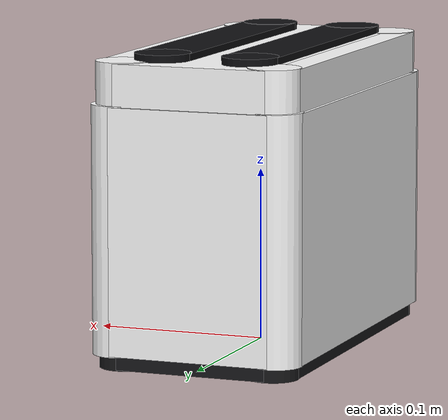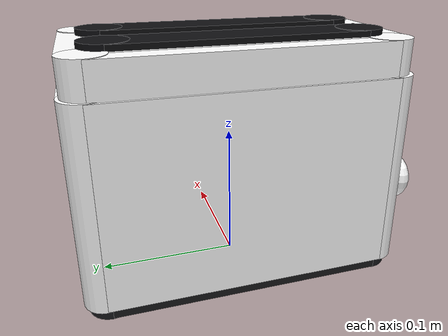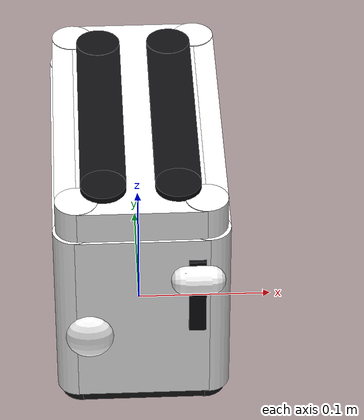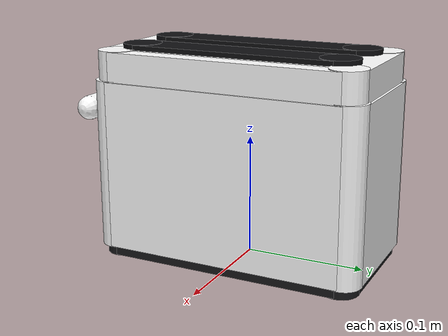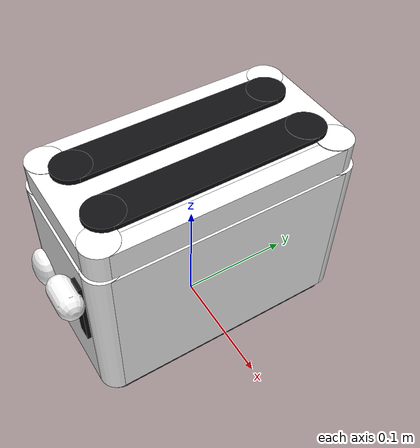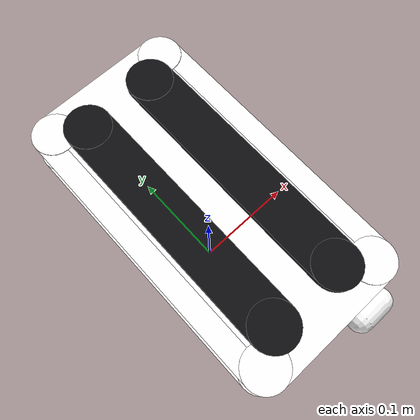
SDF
<?xml version="1.0"?>
<sdf version="1.6">
  <model name="toaster_4_slice">
    <static>true</static>
    <link name="link">
      <visual name="body_a">
        <pose>0 0 0.078 0 0 0</pose>
        <geometry><box><size>0.094 0.23 0.14</size></box></geometry>
        <material><pbr><metal><albedo_map>textures/stainless.png</albedo_map><metalness>0.15</metalness><roughness>0.25</roughness></metal></pbr><ambient>1 1 1 1</ambient><diffuse>1 1 1 1</diffuse><specular>1 1 1 1</specular><emissive>0 0 0 1</emissive></material>
      </visual>
      <visual name="body_b0">
        <pose>-0.0545 0 0.078 0 0 0</pose>
        <geometry><box><size>0.015 0.2 0.14</size></box></geometry>
        <material><pbr><metal><albedo_map>textures/stainless.png</albedo_map><metalness>0.15</metalness><roughness>0.25</roughness></metal></pbr><ambient>1 1 1 1</ambient><diffuse>1 1 1 1</diffuse><specular>1 1 1 1</specular><emissive>0 0 0 1</emissive></material>
      </visual>
      <visual name="body_b1">
        <pose>0.0545 0 0.078 0 0 0</pose>
        <geometry><box><size>0.015 0.2 0.14</size></box></geometry>
        <material><pbr><metal><albedo_map>textures/stainless.png</albedo_map><metalness>0.15</metalness><roughness>0.25</roughness></metal></pbr><ambient>1 1 1 1</ambient><diffuse>1 1 1 1</diffuse><specular>1 1 1 1</specular><emissive>0 0 0 1</emissive></material>
      </visual>
      <visual name="body_c0">
        <pose>-0.047 -0.1 0.078 0 0 0</pose>
        <geometry><cylinder><radius>0.015</radius><length>0.1406</length></cylinder></geometry>
        <material><pbr><metal><albedo_map>textures/stainless.png</albedo_map><metalness>0.15</metalness><roughness>0.25</roughness></metal></pbr><ambient>1 1 1 1</ambient><diffuse>1 1 1 1</diffuse><specular>1 1 1 1</specular><emissive>0 0 0 1</emissive></material>
      </visual>
      <visual name="body_c1">
        <pose>-0.047 0.1 0.078 0 0 0</pose>
        <geometry><cylinder><radius>0.015</radius><length>0.14078</length></cylinder></geometry>
        <material><pbr><metal><albedo_map>textures/stainless.png</albedo_map><metalness>0.15</metalness><roughness>0.25</roughness></metal></pbr><ambient>1 1 1 1</ambient><diffuse>1 1 1 1</diffuse><specular>1 1 1 1</specular><emissive>0 0 0 1</emissive></material>
      </visual>
      <visual name="body_c2">
        <pose>0.047 -0.1 0.078 0 0 0</pose>
        <geometry><cylinder><radius>0.015</radius><length>0.14096</length></cylinder></geometry>
        <material><pbr><metal><albedo_map>textures/stainless.png</albedo_map><metalness>0.15</metalness><roughness>0.25</roughness></metal></pbr><ambient>1 1 1 1</ambient><diffuse>1 1 1 1</diffuse><specular>1 1 1 1</specular><emissive>0 0 0 1</emissive></material>
      </visual>
      <visual name="body_c3">
        <pose>0.047 0.1 0.078 0 0 0</pose>
        <geometry><cylinder><radius>0.015</radius><length>0.14114</length></cylinder></geometry>
        <material><pbr><metal><albedo_map>textures/stainless.png</albedo_map><metalness>0.15</metalness><roughness>0.25</roughness></metal></pbr><ambient>1 1 1 1</ambient><diffuse>1 1 1 1</diffuse><specular>1 1 1 1</specular><emissive>0 0 0 1</emissive></material>
      </visual>
      <visual name="deck_a">
        <pose>0 0 0.16 0 0 0</pose>
        <geometry><box><size>0.09 0.226 0.024</size></box></geometry>
        <material><pbr><metal><albedo_map>textures/stainless.png</albedo_map><metalness>0.15</metalness><roughness>0.25</roughness></metal></pbr><ambient>1 1 1 1</ambient><diffuse>1 1 1 1</diffuse><specular>1 1 1 1</specular><emissive>0 0 0 1</emissive></material>
      </visual>
      <visual name="deck_b0">
        <pose>-0.0525 0 0.16 0 0 0</pose>
        <geometry><box><size>0.015 0.196 0.024</size></box></geometry>
        <material><pbr><metal><albedo_map>textures/stainless.png</albedo_map><metalness>0.15</metalness><roughness>0.25</roughness></metal></pbr><ambient>1 1 1 1</ambient><diffuse>1 1 1 1</diffuse><specular>1 1 1 1</specular><emissive>0 0 0 1</emissive></material>
      </visual>
      <visual name="deck_b1">
        <pose>0.0525 0 0.16 0 0 0</pose>
        <geometry><box><size>0.015 0.196 0.024</size></box></geometry>
        <material><pbr><metal><albedo_map>textures/stainless.png</albedo_map><metalness>0.15</metalness><roughness>0.25</roughness></metal></pbr><ambient>1 1 1 1</ambient><diffuse>1 1 1 1</diffuse><specular>1 1 1 1</specular><emissive>0 0 0 1</emissive></material>
      </visual>
      <visual name="deck_c0">
        <pose>-0.045 -0.098 0.16 0 0 0</pose>
        <geometry><cylinder><radius>0.015</radius><length>0.0246</length></cylinder></geometry>
        <material><pbr><metal><albedo_map>textures/stainless.png</albedo_map><metalness>0.15</metalness><roughness>0.25</roughness></metal></pbr><ambient>1 1 1 1</ambient><diffuse>1 1 1 1</diffuse><specular>1 1 1 1</specular><emissive>0 0 0 1</emissive></material>
      </visual>
      <visual name="deck_c1">
        <pose>-0.045 0.098 0.16 0 0 0</pose>
        <geometry><cylinder><radius>0.015</radius><length>0.02478</length></cylinder></geometry>
        <material><pbr><metal><albedo_map>textures/stainless.png</albedo_map><metalness>0.15</metalness><roughness>0.25</roughness></metal></pbr><ambient>1 1 1 1</ambient><diffuse>1 1 1 1</diffuse><specular>1 1 1 1</specular><emissive>0 0 0 1</emissive></material>
      </visual>
      <visual name="deck_c2">
        <pose>0.045 -0.098 0.16 0 0 0</pose>
        <geometry><cylinder><radius>0.015</radius><length>0.02496</length></cylinder></geometry>
        <material><pbr><metal><albedo_map>textures/stainless.png</albedo_map><metalness>0.15</metalness><roughness>0.25</roughness></metal></pbr><ambient>1 1 1 1</ambient><diffuse>1 1 1 1</diffuse><specular>1 1 1 1</specular><emissive>0 0 0 1</emissive></material>
      </visual>
      <visual name="deck_c3">
        <pose>0.045 0.098 0.16 0 0 0</pose>
        <geometry><cylinder><radius>0.015</radius><length>0.02514</length></cylinder></geometry>
        <material><pbr><metal><albedo_map>textures/stainless.png</albedo_map><metalness>0.15</metalness><roughness>0.25</roughness></metal></pbr><ambient>1 1 1 1</ambient><diffuse>1 1 1 1</diffuse><specular>1 1 1 1</specular><emissive>0 0 0 1</emissive></material>
      </visual>
      <visual name="foot_a">
        <pose>0 0 0.004 0 0 0</pose>
        <geometry><box><size>0.088 0.224 0.008</size></box></geometry>
        <material><pbr><metal><metalness>0.00</metalness><roughness>0.45</roughness></metal></pbr><ambient>0.090 0.090 0.100 1</ambient><diffuse>0.090 0.090 0.100 1</diffuse><specular>0.3 0.3 0.3 1</specular><emissive>0 0 0 1</emissive></material>
      </visual>
      <visual name="foot_b0">
        <pose>-0.0515 0 0.004 0 0 0</pose>
        <geometry><box><size>0.015 0.194 0.008</size></box></geometry>
        <material><pbr><metal><metalness>0.00</metalness><roughness>0.45</roughness></metal></pbr><ambient>0.090 0.090 0.100 1</ambient><diffuse>0.090 0.090 0.100 1</diffuse><specular>0.3 0.3 0.3 1</specular><emissive>0 0 0 1</emissive></material>
      </visual>
      <visual name="foot_b1">
        <pose>0.0515 0 0.004 0 0 0</pose>
        <geometry><box><size>0.015 0.194 0.008</size></box></geometry>
        <material><pbr><metal><metalness>0.00</metalness><roughness>0.45</roughness></metal></pbr><ambient>0.090 0.090 0.100 1</ambient><diffuse>0.090 0.090 0.100 1</diffuse><specular>0.3 0.3 0.3 1</specular><emissive>0 0 0 1</emissive></material>
      </visual>
      <visual name="foot_c0">
        <pose>-0.044 -0.097 0.004 0 0 0</pose>
        <geometry><cylinder><radius>0.015</radius><length>0.0086</length></cylinder></geometry>
        <material><pbr><metal><metalness>0.00</metalness><roughness>0.45</roughness></metal></pbr><ambient>0.090 0.090 0.100 1</ambient><diffuse>0.090 0.090 0.100 1</diffuse><specular>0.3 0.3 0.3 1</specular><emissive>0 0 0 1</emissive></material>
      </visual>
      <visual name="foot_c1">
        <pose>-0.044 0.097 0.004 0 0 0</pose>
        <geometry><cylinder><radius>0.015</radius><length>0.00878</length></cylinder></geometry>
        <material><pbr><metal><metalness>0.00</metalness><roughness>0.45</roughness></metal></pbr><ambient>0.090 0.090 0.100 1</ambient><diffuse>0.090 0.090 0.100 1</diffuse><specular>0.3 0.3 0.3 1</specular><emissive>0 0 0 1</emissive></material>
      </visual>
      <visual name="foot_c2">
        <pose>0.044 -0.097 0.004 0 0 0</pose>
        <geometry><cylinder><radius>0.015</radius><length>0.00896</length></cylinder></geometry>
        <material><pbr><metal><metalness>0.00</metalness><roughness>0.45</roughness></metal></pbr><ambient>0.090 0.090 0.100 1</ambient><diffuse>0.090 0.090 0.100 1</diffuse><specular>0.3 0.3 0.3 1</specular><emissive>0 0 0 1</emissive></material>
      </visual>
      <visual name="foot_c3">
        <pose>0.044 0.097 0.004 0 0 0</pose>
        <geometry><cylinder><radius>0.015</radius><length>0.00914</length></cylinder></geometry>
        <material><pbr><metal><metalness>0.00</metalness><roughness>0.45</roughness></metal></pbr><ambient>0.090 0.090 0.100 1</ambient><diffuse>0.090 0.090 0.100 1</diffuse><specular>0.3 0.3 0.3 1</specular><emissive>0 0 0 1</emissive></material>
      </visual>
      <visual name="slot0_run">
        <pose>-0.026 0 0.17 0 0 0</pose>
        <geometry><box><size>0.032 0.17 0.012</size></box></geometry>
        <material><pbr><metal><metalness>0.00</metalness><roughness>0.35</roughness></metal></pbr><ambient>0.060 0.060 0.070 1</ambient><diffuse>0.060 0.060 0.070 1</diffuse><specular>0.3 0.3 0.3 1</specular><emissive>0 0 0 1</emissive></material>
      </visual>
      <visual name="slot0_end0">
        <pose>-0.026 -0.085 0.17 0 0 0</pose>
        <geometry><cylinder><radius>0.016</radius><length>0.0126</length></cylinder></geometry>
        <material><pbr><metal><metalness>0.00</metalness><roughness>0.35</roughness></metal></pbr><ambient>0.060 0.060 0.070 1</ambient><diffuse>0.060 0.060 0.070 1</diffuse><specular>0.3 0.3 0.3 1</specular><emissive>0 0 0 1</emissive></material>
      </visual>
      <visual name="slot0_end1">
        <pose>-0.026 0.085 0.17 0 0 0</pose>
        <geometry><cylinder><radius>0.016</radius><length>0.0126</length></cylinder></geometry>
        <material><pbr><metal><metalness>0.00</metalness><roughness>0.35</roughness></metal></pbr><ambient>0.060 0.060 0.070 1</ambient><diffuse>0.060 0.060 0.070 1</diffuse><specular>0.3 0.3 0.3 1</specular><emissive>0 0 0 1</emissive></material>
      </visual>
      <visual name="slot1_run">
        <pose>0.026 0 0.17 0 0 0</pose>
        <geometry><box><size>0.032 0.17 0.012</size></box></geometry>
        <material><pbr><metal><metalness>0.00</metalness><roughness>0.35</roughness></metal></pbr><ambient>0.060 0.060 0.070 1</ambient><diffuse>0.060 0.060 0.070 1</diffuse><specular>0.3 0.3 0.3 1</specular><emissive>0 0 0 1</emissive></material>
      </visual>
      <visual name="slot1_end0">
        <pose>0.026 -0.085 0.17 0 0 0</pose>
        <geometry><cylinder><radius>0.016</radius><length>0.0126</length></cylinder></geometry>
        <material><pbr><metal><metalness>0.00</metalness><roughness>0.35</roughness></metal></pbr><ambient>0.060 0.060 0.070 1</ambient><diffuse>0.060 0.060 0.070 1</diffuse><specular>0.3 0.3 0.3 1</specular><emissive>0 0 0 1</emissive></material>
      </visual>
      <visual name="slot1_end1">
        <pose>0.026 0.085 0.17 0 0 0</pose>
        <geometry><cylinder><radius>0.016</radius><length>0.0126</length></cylinder></geometry>
        <material><pbr><metal><metalness>0.00</metalness><roughness>0.35</roughness></metal></pbr><ambient>0.060 0.060 0.070 1</ambient><diffuse>0.060 0.060 0.070 1</diffuse><specular>0.3 0.3 0.3 1</specular><emissive>0 0 0 1</emissive></material>
      </visual>
      <visual name="lever_track">
        <pose>0.038 -0.114 0.1 0 0 0</pose>
        <geometry><box><size>0.012 0.008 0.062</size></box></geometry>
        <material><pbr><metal><metalness>0.00</metalness><roughness>0.35</roughness></metal></pbr><ambient>0.060 0.060 0.070 1</ambient><diffuse>0.060 0.060 0.070 1</diffuse><specular>0.3 0.3 0.3 1</specular><emissive>0 0 0 1</emissive></material>
      </visual>
      <visual name="lever">
        <pose>0.038 -0.126 0.122 0 1.570796 0</pose>
        <geometry><capsule><radius>0.01</radius><length>0.018</length></capsule></geometry>
        <material><pbr><metal><albedo_map>textures/stainless.png</albedo_map><metalness>0.25</metalness><roughness>0.15</roughness></metal></pbr><ambient>1 1 1 1</ambient><diffuse>1 1 1 1</diffuse><specular>1 1 1 1</specular><emissive>0 0 0 1</emissive></material>
      </visual>
      <visual name="dial">
        <pose>-0.038 -0.118 0.066 0 0 0</pose>
        <geometry><ellipsoid><radii>0.017 0.01 0.017</radii></ellipsoid></geometry>
        <material><pbr><metal><albedo_map>textures/stainless.png</albedo_map><metalness>0.25</metalness><roughness>0.15</roughness></metal></pbr><ambient>1 1 1 1</ambient><diffuse>1 1 1 1</diffuse><specular>1 1 1 1</specular><emissive>0 0 0 1</emissive></material>
      </visual>
      <collision name="body">
        <pose>0 0 0.0925 0 0 0</pose>
        <geometry><box><size>0.124 0.23 0.185</size></box></geometry>
      </collision>
    </link>
    <allow_auto_disable>1</allow_auto_disable>
  </model>
</sdf>
